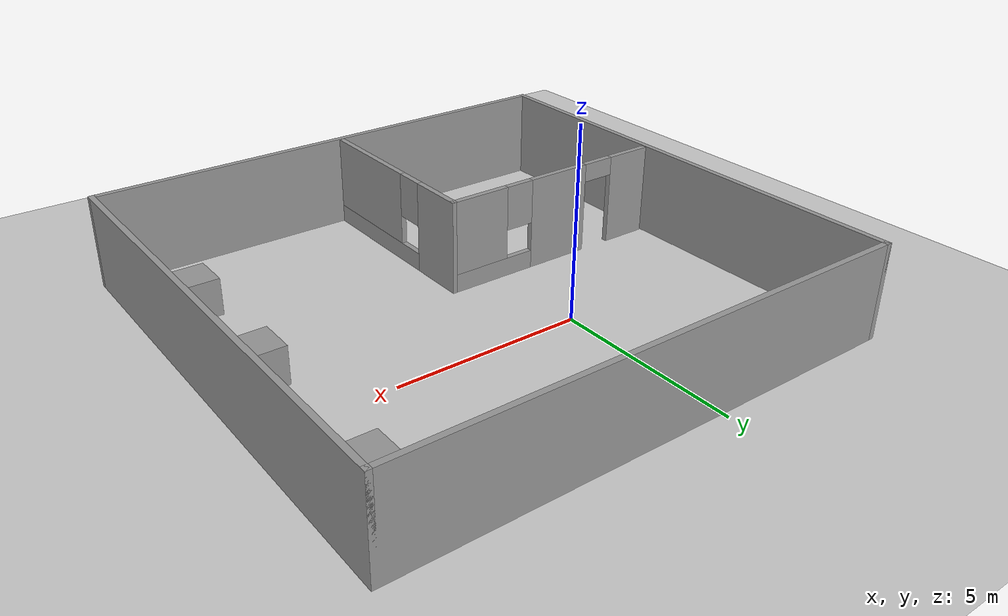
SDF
<sdf version="1.7">
 <world name="default">
  <light name="sun" type="directional">
   <pose>0 0 10 0 -0 0</pose>
   <diffuse>0.8 0.8 0.8 1</diffuse>
   <specular>0.2 0.2 0.2 1</specular>
   <attenuation>
    <range>1000</range>
    <constant>0.9</constant>
    <linear>0.01</linear>
    <quadratic>0.001</quadratic>
   </attenuation>
   <direction>-0.5 0.1 -0.9</direction>
   <spot><inner_angle>0</inner_angle><outer_angle>0</outer_angle><falloff>0</falloff></spot>
  </light>
  <model name="ground_plane">
   <static>1</static>
   <link name="link">
    <collision name="collision">
     <geometry><plane><normal>0 0 1</normal><size>100 100</size></plane></geometry>
     <surface>
      <contact><collide_bitmask>65535</collide_bitmask></contact>
      <friction><ode><mu>100</mu><mu2>50</mu2></ode></friction>
     </surface>
    </collision>
    <visual name="visual">
     <cast_shadows>0</cast_shadows>
     <geometry><plane><normal>0 0 1</normal><size>100 100</size></plane></geometry>
     <material>
      <script><uri>file://media/materials/scripts/gazebo.material</uri><name>Gazebo/Grey</name></script>
     </material>
    </visual>
   </link>
  </model>
  <gravity>0 0 -9.8</gravity>
  <magnetic_field>6e-06 2.3e-05 -4.2e-05</magnetic_field>
  <atmosphere type="adiabatic"/>
  <physics type="ode">
   <max_step_size>0.001</max_step_size>
   <real_time_factor>1</real_time_factor>
   <real_time_update_rate>1000</real_time_update_rate>
  </physics>
  <scene><ambient>0.4 0.4 0.4 1</ambient><background>0.7 0.7 0.7 1</background><shadows>1</shadows></scene>
  <audio><device>default</device></audio>
  <spherical_coordinates>
   <surface_model>EARTH_WGS84</surface_model>
   <latitude_deg>0</latitude_deg>
   <longitude_deg>0</longitude_deg>
   <elevation>0</elevation>
   <heading_deg>0</heading_deg>
  </spherical_coordinates>
  <model name="world_pre">
   <pose>1.71964 -1.77736 0 0 -0 0</pose>
   <link name="Wall_10">
    <collision name="Wall_10_Collision">
     <geometry><box><size>13.25 0.15 2.5</size></box></geometry>
     <pose>0 0 1.25 0 -0 0</pose>
    </collision>
    <visual name="Wall_10_Visual">
     <pose>0 0 1.25 0 -0 0</pose>
     <geometry><box><size>13.25 0.15 2.5</size></box></geometry>
     <material>
      <script><uri>file://media/materials/scripts/gazebo.material</uri><name>Gazebo/Grey</name></script>
      <ambient>1 1 1 1</ambient>
     </material>
     <meta><layer>0</layer></meta>
    </visual>
    <pose>-6.8 -0 0 0 -0 1.5708</pose>
   </link>
   <link name="Wall_12">
    <pose>-3.42865 -1.04171 0 0 -0 0</pose>
    <visual name="Wall_12_Visual_0">
     <pose>-2.60292 0 1.25 0 -0 0</pose>
     <geometry><box><size>1.29416 0.15 2.5</size></box></geometry>
     <material>
      <script><uri>file://media/materials/scripts/gazebo.material</uri><name>Gazebo/Grey</name></script>
      <ambient>1 1 1 1</ambient>
     </material>
     <meta><layer>0</layer></meta>
    </visual>
    <collision name="Wall_12_Collision_0">
     <geometry><box><size>1.29416 0.15 2.5</size></box></geometry>
     <pose>-2.60292 0 1.25 0 -0 0</pose>
    </collision>
    <visual name="Wall_12_Visual_1">
     <pose>-0.149905 0 1.25 0 -0 0</pose>
     <geometry><box><size>1.81187 0.15 2.5</size></box></geometry>
     <material>
      <script><uri>file://media/materials/scripts/gazebo.material</uri><name>Gazebo/Grey</name></script>
      <ambient>1 1 1 1</ambient>
     </material>
     <meta><layer>0</layer></meta>
    </visual>
    <collision name="Wall_12_Collision_1">
     <geometry><box><size>1.81187 0.15 2.5</size></box></geometry>
     <pose>-0.149905 0 1.25 0 -0 0</pose>
    </collision>
    <visual name="Wall_12_Visual_2">
     <pose>2.00301 0 0.25 0 -0 0</pose>
     <geometry><box><size>2.49397 0.15 0.5</size></box></geometry>
     <material>
      <script><uri>file://media/materials/scripts/gazebo.material</uri><name>Gazebo/Grey</name></script>
      <ambient>1 1 1 1</ambient>
     </material>
     <meta><layer>0</layer></meta>
    </visual>
    <collision name="Wall_12_Collision_2">
     <geometry><box><size>2.49397 0.15 0.5</size></box></geometry>
     <pose>2.00301 0 0.25 0 -0 0</pose>
    </collision>
    <visual name="Wall_12_Visual_3">
     <pose>2.40301 0 1.5 0 -0 0</pose>
     <geometry><box><size>1.69397 0.15 2</size></box></geometry>
     <material>
      <script><uri>file://media/materials/scripts/gazebo.material</uri><name>Gazebo/Grey</name></script>
      <ambient>1 1 1 1</ambient>
     </material>
     <meta><layer>0</layer></meta>
    </visual>
    <collision name="Wall_12_Collision_3">
     <geometry><box><size>1.69397 0.15 2</size></box></geometry>
     <pose>2.40301 0 1.5 0 -0 0</pose>
    </collision>
    <visual name="Wall_12_Visual_4">
     <pose>1.15603 0 1.9 0 -0 0</pose>
     <geometry><box><size>0.8 0.15 1.2</size></box></geometry>
     <material>
      <script><uri>file://media/materials/scripts/gazebo.material</uri><name>Gazebo/Grey</name></script>
      <ambient>1 1 1 1</ambient>
     </material>
     <meta><layer>0</layer></meta>
    </visual>
    <collision name="Wall_12_Collision_4">
     <geometry><box><size>0.8 0.15 1.2</size></box></geometry>
     <pose>1.15603 0 1.9 0 -0 0</pose>
    </collision>
    <visual name="Wall_12_Visual_5">
     <pose>-1.50584 0 2.25 0 -0 0</pose>
     <geometry><box><size>0.9 0.15 0.5</size></box></geometry>
     <material>
      <script><uri>file://media/materials/scripts/gazebo.material</uri><name>Gazebo/Grey</name></script>
      <ambient>1 1 1 1</ambient>
     </material>
     <meta><layer>0</layer></meta>
    </visual>
    <collision name="Wall_12_Collision_5">
     <geometry><box><size>0.9 0.15 0.5</size></box></geometry>
     <pose>-1.50584 0 2.25 0 -0 0</pose>
    </collision>
   </link>
   <link name="Wall_13">
    <pose>-0.232541 -3.7103 0 0 -0 -1.56776</pose>
    <visual name="Wall_13_Visual_0">
     <pose>-1.96066 0 1.25 0 -0 0</pose>
     <geometry><box><size>1.56614 0.15 2.5</size></box></geometry>
     <material>
      <script><uri>file://media/materials/scripts/gazebo.material</uri><name>Gazebo/Grey</name></script>
      <ambient>1 1 1 1</ambient>
     </material>
     <meta><layer>0</layer></meta>
    </visual>
    <collision name="Wall_13_Collision_0">
     <geometry><box><size>1.56614 0.15 2.5</size></box></geometry>
     <pose>-1.96066 0 1.25 0 -0 0</pose>
    </collision>
    <visual name="Wall_13_Visual_1">
     <pose>0.783072 0 0.25 0 -0 0</pose>
     <geometry><box><size>3.92132 0.15 0.5</size></box></geometry>
     <material>
      <script><uri>file://media/materials/scripts/gazebo.material</uri><name>Gazebo/Grey</name></script>
      <ambient>1 1 1 1</ambient>
     </material>
     <meta><layer>0</layer></meta>
    </visual>
    <collision name="Wall_13_Collision_1">
     <geometry><box><size>3.92132 0.15 0.5</size></box></geometry>
     <pose>0.783072 0 0.25 0 -0 0</pose>
    </collision>
    <visual name="Wall_13_Visual_2">
     <pose>1.18307 0 1.5 0 -0 0</pose>
     <geometry><box><size>3.12132 0.15 2</size></box></geometry>
     <material>
      <script><uri>file://media/materials/scripts/gazebo.material</uri><name>Gazebo/Grey</name></script>
      <ambient>1 1 1 1</ambient>
     </material>
     <meta><layer>0</layer></meta>
    </visual>
    <collision name="Wall_13_Collision_2">
     <geometry><box><size>3.12132 0.15 2</size></box></geometry>
     <pose>1.18307 0 1.5 0 -0 0</pose>
    </collision>
    <visual name="Wall_13_Visual_3">
     <pose>-0.777586 0 1.9 0 -0 0</pose>
     <geometry><box><size>0.8 0.15 1.2</size></box></geometry>
     <material>
      <script><uri>file://media/materials/scripts/gazebo.material</uri><name>Gazebo/Grey</name></script>
      <ambient>1 1 1 1</ambient>
     </material>
     <meta><layer>0</layer></meta>
    </visual>
    <collision name="Wall_13_Collision_3">
     <geometry><box><size>0.8 0.15 1.2</size></box></geometry>
     <pose>-0.777586 0 1.9 0 -0 0</pose>
    </collision>
   </link>
   <link name="Wall_7">
    <collision name="Wall_7_Collision">
     <geometry><box><size>13.75 0.15 2.5</size></box></geometry>
     <pose>0 0 1.25 0 -0 0</pose>
    </collision>
    <visual name="Wall_7_Visual">
     <pose>0 0 1.25 0 -0 0</pose>
     <geometry><box><size>13.75 0.15 2.5</size></box></geometry>
     <material>
      <script><uri>file://media/materials/scripts/gazebo.material</uri><name>Gazebo/Grey</name></script>
      <ambient>1 1 1 1</ambient>
     </material>
     <meta><layer>0</layer></meta>
    </visual>
    <pose>0 6.55 0 0 -0 0</pose>
   </link>
   <link name="Wall_8">
    <collision name="Wall_8_Collision">
     <geometry><box><size>13.25 0.15 2.5</size></box></geometry>
     <pose>0 0 1.25 0 -0 0</pose>
    </collision>
    <visual name="Wall_8_Visual">
     <pose>0 0 1.25 0 -0 0</pose>
     <geometry><box><size>13.25 0.15 2.5</size></box></geometry>
     <material>
      <script><uri>file://media/materials/scripts/gazebo.material</uri><name>Gazebo/Grey</name></script>
      <ambient>1 1 1 1</ambient>
     </material>
     <meta><layer>0</layer></meta>
    </visual>
    <pose>6.8 -0 0 0 -0 -1.5708</pose>
   </link>
   <link name="Wall_9">
    <collision name="Wall_9_Collision">
     <geometry><box><size>13.75 0.15 2.5</size></box></geometry>
     <pose>0 0 1.25 0 -0 0</pose>
    </collision>
    <visual name="Wall_9_Visual">
     <pose>0 0 1.25 0 -0 0</pose>
     <geometry><box><size>13.75 0.15 2.5</size></box></geometry>
     <material>
      <script><uri>file://media/materials/scripts/gazebo.material</uri><name>Gazebo/Grey</name></script>
      <ambient>1 1 1 1</ambient>
     </material>
     <meta><layer>0</layer></meta>
    </visual>
    <pose>0 -6.55 0 0 -0 3.14159</pose>
   </link>
   <static>1</static>
  </model>
  <model name="table_3">
   <pose>7.3 2.7 0.5 0 -0 0</pose>
   <link name="link">
    <inertial>
     <mass>1</mass>
     <inertia>
      <ixx>0.166667</ixx>
      <ixy>0</ixy>
      <ixz>0</ixz>
      <iyy>0.166667</iyy>
      <iyz>0</iyz>
      <izz>0.166667</izz>
     </inertia>
    </inertial>
    <collision name="collision"><geometry><box><size>1 1 1</size></box></geometry></collision>
    <visual name="visual">
     <geometry><box><size>1 1 1</size></box></geometry>
     <material>
      <script><name>Gazebo/Grey</name><uri>file://media/materials/scripts/gazebo.material</uri></script>
     </material>
    </visual>
   </link>
  </model>
  <model name="table_2">
   <pose>7.3 -1.97827 0.5 0 -0 0</pose>
   <link name="link">
    <inertial>
     <mass>1</mass>
     <inertia>
      <ixx>0.166667</ixx>
      <ixy>0</ixy>
      <ixz>0</ixz>
      <iyy>0.166667</iyy>
      <iyz>0</iyz>
      <izz>0.166667</izz>
     </inertia>
    </inertial>
    <collision name="collision"><geometry><box><size>1 1 1</size></box></geometry></collision>
    <visual name="visual">
     <geometry><box><size>1 1 1</size></box></geometry>
     <material>
      <script><name>Gazebo/Grey</name><uri>file://media/materials/scripts/gazebo.material</uri></script>
     </material>
    </visual>
   </link>
  </model>
  <model name="table_1">
   <pose>7.2 -5.7 0.5 0 -0 0</pose>
   <link name="link">
    <inertial>
     <mass>1</mass>
     <inertia>
      <ixx>0.166667</ixx>
      <ixy>0</ixy>
      <ixz>0</ixz>
      <iyy>0.166667</iyy>
      <iyz>0</iyz>
      <izz>0.166667</izz>
     </inertia>
    </inertial>
    <collision name="collision"><geometry><box><size>1 1 1</size></box></geometry></collision>
    <visual name="visual">
     <geometry><box><size>1 1 1</size></box></geometry>
     <material>
      <script><name>Gazebo/Grey</name><uri>file://media/materials/scripts/gazebo.material</uri></script>
     </material>
    </visual>
   </link>
  </model>
 </world>
</sdf>
